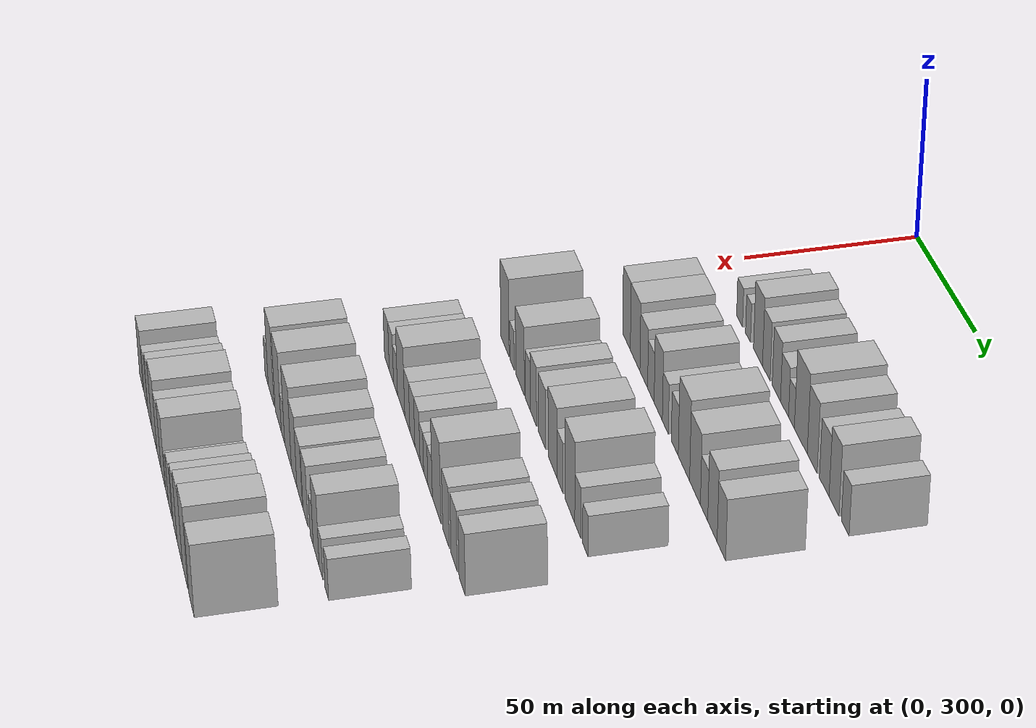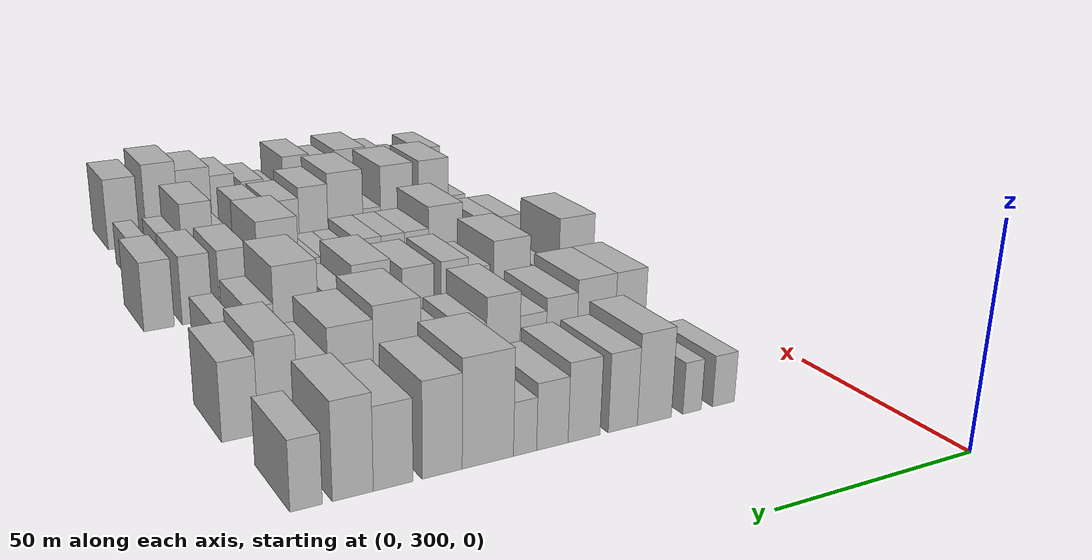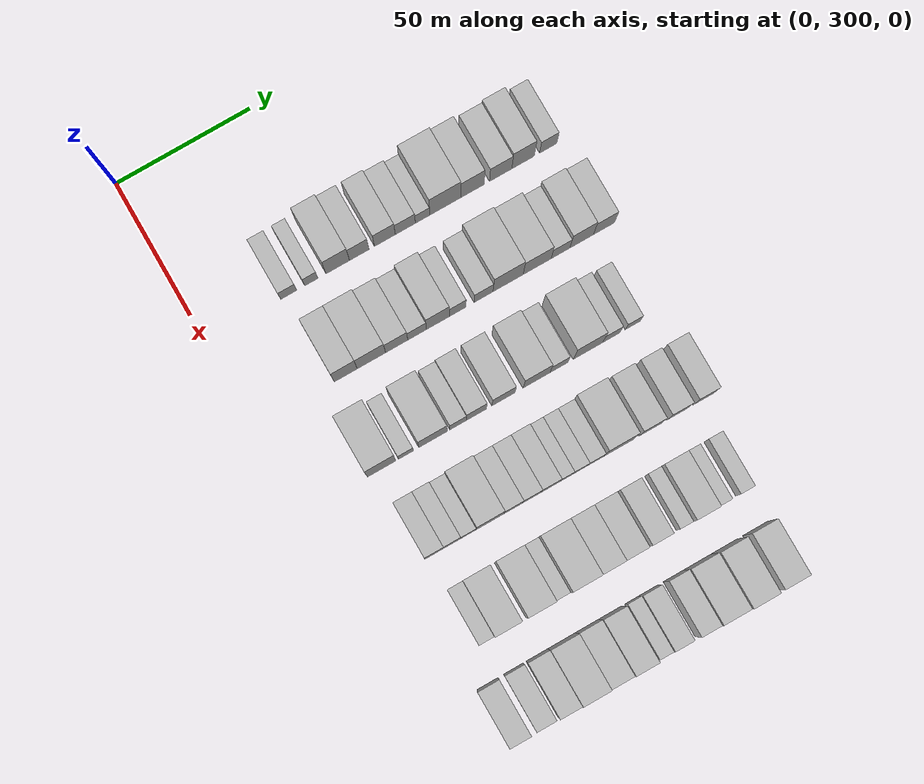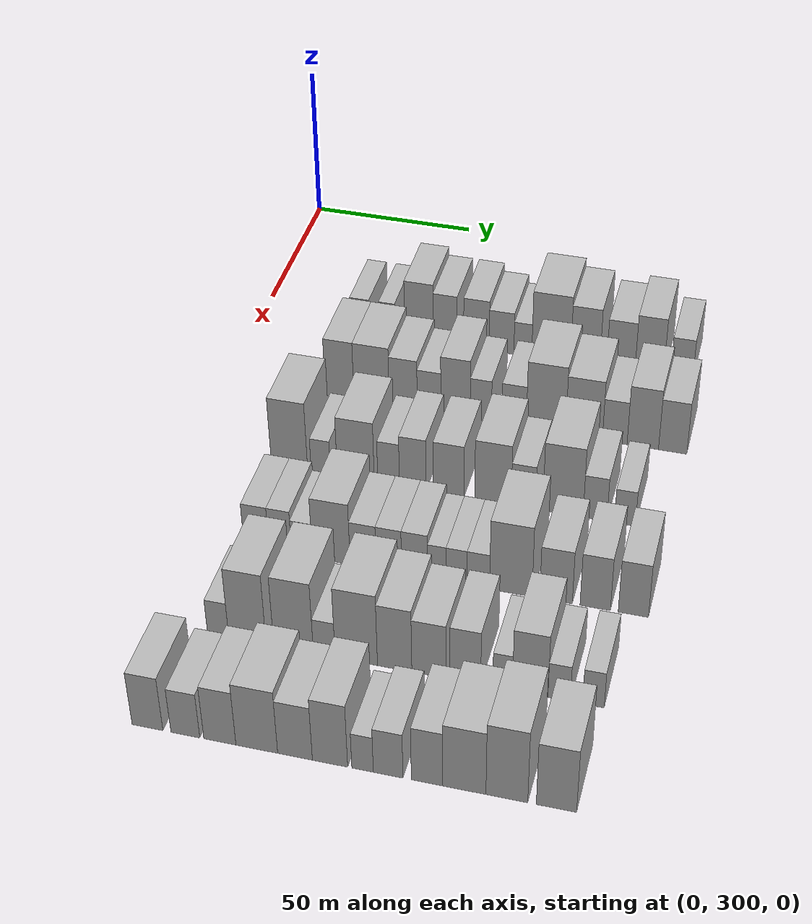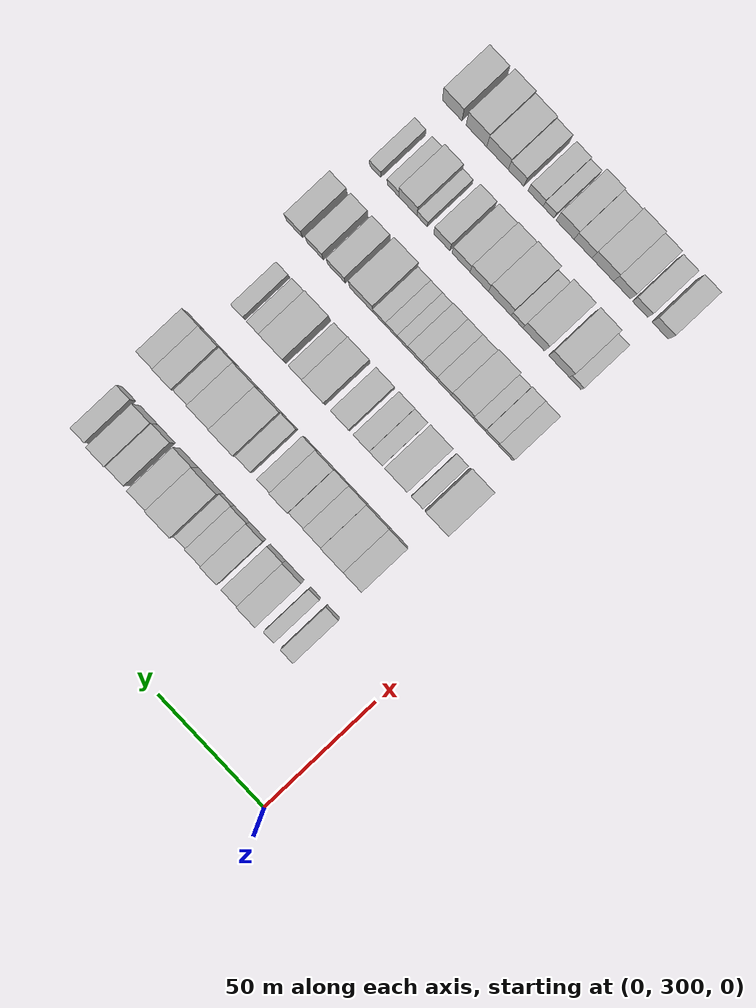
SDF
<sdf version="1.6">
 <world name="default">
  <model name="building_93">
   <static>1</static>
   <pose>50.0000 330.9010 0 0.000000 0.000000 0.000000</pose>
   <link name="link">
    <pose>0 0 6.00 0 0 0</pose>
    <collision name="collision"><geometry><box><size>20.0000 5.9238 12.0000</size></box></geometry></collision>
    <visual name="visual">
     <cast_shadows>0</cast_shadows>
     <geometry><box><size>20.0000 5.9238 12.0000</size></box></geometry>
     <material>
      <script>
       <uri>model://HANNAS_wall/materials/scripts</uri>
       <uri>model://HANNAS_wall/materials/textures</uri>
       <name>vrc/HANNAS_wall</name>
      </script>
     </material>
    </visual>
   </link>
  </model>
  <model name="building_94">
   <static>1</static>
   <pose>50.0000 339.3056 0 0.000000 0.000000 0.000000</pose>
   <link name="link">
    <pose>0 0 6.00 0 0 0</pose>
    <collision name="collision"><geometry><box><size>20.0000 4.8854 12.0000</size></box></geometry></collision>
    <visual name="visual">
     <cast_shadows>0</cast_shadows>
     <geometry><box><size>20.0000 4.8854 12.0000</size></box></geometry>
     <material>
      <script>
       <uri>model://HANNAS_wall/materials/scripts</uri>
       <uri>model://HANNAS_wall/materials/textures</uri>
       <name>vrc/HANNAS_wall</name>
      </script>
     </material>
    </visual>
   </link>
  </model>
  <model name="building_95">
   <static>1</static>
   <pose>50.0000 349.1194 0 0.000000 0.000000 0.000000</pose>
   <link name="link">
    <pose>0 0 10.50 0 0 0</pose>
    <collision name="collision"><geometry><box><size>20.0000 8.7423 21.0000</size></box></geometry></collision>
    <visual name="visual">
     <cast_shadows>0</cast_shadows>
     <geometry><box><size>20.0000 8.7423 21.0000</size></box></geometry>
     <material>
      <script>
       <uri>model://HANNAS_wall/materials/scripts</uri>
       <uri>model://HANNAS_wall/materials/textures</uri>
       <name>vrc/HANNAS_wall</name>
      </script>
     </material>
    </visual>
   </link>
  </model>
  <model name="building_96">
   <static>1</static>
   <pose>50.0000 357.1455 0 0.000000 0.000000 0.000000</pose>
   <link name="link">
    <pose>0 0 9.00 0 0 0</pose>
    <collision name="collision"><geometry><box><size>20.0000 7.3099 18.0000</size></box></geometry></collision>
    <visual name="visual">
     <cast_shadows>0</cast_shadows>
     <geometry><box><size>20.0000 7.3099 18.0000</size></box></geometry>
     <material>
      <script>
       <uri>model://HANNAS_wall/materials/scripts</uri>
       <uri>model://HANNAS_wall/materials/textures</uri>
       <name>vrc/HANNAS_wall</name>
      </script>
     </material>
    </visual>
   </link>
  </model>
  <model name="building_97">
   <static>1</static>
   <pose>50.0000 366.6924 0 0.000000 0.000000 0.000000</pose>
   <link name="link">
    <pose>0 0 9.00 0 0 0</pose>
    <collision name="collision"><geometry><box><size>20.0000 7.7838 18.0000</size></box></geometry></collision>
    <visual name="visual">
     <cast_shadows>0</cast_shadows>
     <geometry><box><size>20.0000 7.7838 18.0000</size></box></geometry>
     <material>
      <script>
       <uri>model://HANNAS_wall/materials/scripts</uri>
       <uri>model://HANNAS_wall/materials/textures</uri>
       <name>vrc/HANNAS_wall</name>
      </script>
     </material>
    </visual>
   </link>
  </model>
  <model name="building_98">
   <static>1</static>
   <pose>50.0000 374.3285 0 0.000000 0.000000 0.000000</pose>
   <link name="link">
    <pose>0 0 7.50 0 0 0</pose>
    <collision name="collision"><geometry><box><size>20.0000 7.4884 15.0000</size></box></geometry></collision>
    <visual name="visual">
     <cast_shadows>0</cast_shadows>
     <geometry><box><size>20.0000 7.4884 15.0000</size></box></geometry>
     <material>
      <script>
       <uri>model://HANNAS_wall/materials/scripts</uri>
       <uri>model://HANNAS_wall/materials/textures</uri>
       <name>vrc/HANNAS_wall</name>
      </script>
     </material>
    </visual>
   </link>
  </model>
  <model name="building_99">
   <static>1</static>
   <pose>50.0000 380.7645 0 0.000000 0.000000 0.000000</pose>
   <link name="link">
    <pose>0 0 6.00 0 0 0</pose>
    <collision name="collision"><geometry><box><size>20.0000 5.3836 12.0000</size></box></geometry></collision>
    <visual name="visual">
     <cast_shadows>0</cast_shadows>
     <geometry><box><size>20.0000 5.3836 12.0000</size></box></geometry>
     <material>
      <script>
       <uri>model://HANNAS_wall/materials/scripts</uri>
       <uri>model://HANNAS_wall/materials/textures</uri>
       <name>vrc/HANNAS_wall</name>
      </script>
     </material>
    </visual>
   </link>
  </model>
  <model name="building_100">
   <static>1</static>
   <pose>50.0000 389.2644 0 0.000000 0.000000 0.000000</pose>
   <link name="link">
    <pose>0 0 12.00 0 0 0</pose>
    <collision name="collision"><geometry><box><size>20.0000 11.6163 24.0000</size></box></geometry></collision>
    <visual name="visual">
     <cast_shadows>0</cast_shadows>
     <geometry><box><size>20.0000 11.6163 24.0000</size></box></geometry>
     <material>
      <script>
       <uri>model://HANNAS_wall/materials/scripts</uri>
       <uri>model://HANNAS_wall/materials/textures</uri>
       <name>vrc/HANNAS_wall</name>
      </script>
     </material>
    </visual>
   </link>
  </model>
  <model name="building_101">
   <static>1</static>
   <pose>50.0000 399.4384 0 0.000000 0.000000 0.000000</pose>
   <link name="link">
    <pose>0 0 10.50 0 0 0</pose>
    <collision name="collision"><geometry><box><size>20.0000 8.7316 21.0000</size></box></geometry></collision>
    <visual name="visual">
     <cast_shadows>0</cast_shadows>
     <geometry><box><size>20.0000 8.7316 21.0000</size></box></geometry>
     <material>
      <script>
       <uri>model://HANNAS_wall/materials/scripts</uri>
       <uri>model://HANNAS_wall/materials/textures</uri>
       <name>vrc/HANNAS_wall</name>
      </script>
     </material>
    </visual>
   </link>
  </model>
  <model name="building_102">
   <static>1</static>
   <pose>50.0000 410.0039 0 0.000000 0.000000 0.000000</pose>
   <link name="link">
    <pose>0 0 9.00 0 0 0</pose>
    <collision name="collision"><geometry><box><size>20.0000 8.3994 18.0000</size></box></geometry></collision>
    <visual name="visual">
     <cast_shadows>0</cast_shadows>
     <geometry><box><size>20.0000 8.3994 18.0000</size></box></geometry>
     <material>
      <script>
       <uri>model://HANNAS_wall/materials/scripts</uri>
       <uri>model://HANNAS_wall/materials/textures</uri>
       <name>vrc/HANNAS_wall</name>
      </script>
     </material>
    </visual>
   </link>
  </model>
  <model name="building_103">
   <static>1</static>
   <pose>50.0000 418.4272 0 0.000000 0.000000 0.000000</pose>
   <link name="link">
    <pose>0 0 10.50 0 0 0</pose>
    <collision name="collision"><geometry><box><size>20.0000 8.4471 21.0000</size></box></geometry></collision>
    <visual name="visual">
     <cast_shadows>0</cast_shadows>
     <geometry><box><size>20.0000 8.4471 21.0000</size></box></geometry>
     <material>
      <script>
       <uri>model://HANNAS_wall/materials/scripts</uri>
       <uri>model://HANNAS_wall/materials/textures</uri>
       <name>vrc/HANNAS_wall</name>
      </script>
     </material>
    </visual>
   </link>
  </model>
  <model name="building_104">
   <static>1</static>
   <pose>50.0000 427.8974 0 0.000000 0.000000 0.000000</pose>
   <link name="link">
    <pose>0 0 7.50 0 0 0</pose>
    <collision name="collision"><geometry><box><size>20.0000 6.4935 15.0000</size></box></geometry></collision>
    <visual name="visual">
     <cast_shadows>0</cast_shadows>
     <geometry><box><size>20.0000 6.4935 15.0000</size></box></geometry>
     <material>
      <script>
       <uri>model://HANNAS_wall/materials/scripts</uri>
       <uri>model://HANNAS_wall/materials/textures</uri>
       <name>vrc/HANNAS_wall</name>
      </script>
     </material>
    </visual>
   </link>
  </model>
  <model name="building_214">
   <static>1</static>
   <pose>82.0000 333.9862 0 0.000000 0.000000 0.000000</pose>
   <link name="link">
    <pose>0 0 10.50 0 0 0</pose>
    <collision name="collision"><geometry><box><size>20.0000 8.5135 21.0000</size></box></geometry></collision>
    <visual name="visual">
     <cast_shadows>0</cast_shadows>
     <geometry><box><size>20.0000 8.5135 21.0000</size></box></geometry>
     <material>
      <script>
       <uri>model://HANNAS_wall/materials/scripts</uri>
       <uri>model://HANNAS_wall/materials/textures</uri>
       <name>vrc/HANNAS_wall</name>
      </script>
     </material>
    </visual>
   </link>
  </model>
  <model name="building_215">
   <static>1</static>
   <pose>82.0000 343.4854 0 0.000000 0.000000 0.000000</pose>
   <link name="link">
    <pose>0 0 10.50 0 0 0</pose>
    <collision name="collision"><geometry><box><size>20.0000 10.4848 21.0000</size></box></geometry></collision>
    <visual name="visual">
     <cast_shadows>0</cast_shadows>
     <geometry><box><size>20.0000 10.4848 21.0000</size></box></geometry>
     <material>
      <script>
       <uri>model://HANNAS_wall/materials/scripts</uri>
       <uri>model://HANNAS_wall/materials/textures</uri>
       <name>vrc/HANNAS_wall</name>
      </script>
     </material>
    </visual>
   </link>
  </model>
  <model name="building_216">
   <static>1</static>
   <pose>82.0000 352.8462 0 0.000000 0.000000 0.000000</pose>
   <link name="link">
    <pose>0 0 9.00 0 0 0</pose>
    <collision name="collision"><geometry><box><size>20.0000 8.2369 18.0000</size></box></geometry></collision>
    <visual name="visual">
     <cast_shadows>0</cast_shadows>
     <geometry><box><size>20.0000 8.2369 18.0000</size></box></geometry>
     <material>
      <script>
       <uri>model://HANNAS_wall/materials/scripts</uri>
       <uri>model://HANNAS_wall/materials/textures</uri>
       <name>vrc/HANNAS_wall</name>
      </script>
     </material>
    </visual>
   </link>
  </model>
  <model name="building_217">
   <static>1</static>
   <pose>82.0000 360.4219 0 0.000000 0.000000 0.000000</pose>
   <link name="link">
    <pose>0 0 7.50 0 0 0</pose>
    <collision name="collision"><geometry><box><size>20.0000 6.9145 15.0000</size></box></geometry></collision>
    <visual name="visual">
     <cast_shadows>0</cast_shadows>
     <geometry><box><size>20.0000 6.9145 15.0000</size></box></geometry>
     <material>
      <script>
       <uri>model://HANNAS_wall/materials/scripts</uri>
       <uri>model://HANNAS_wall/materials/textures</uri>
       <name>vrc/HANNAS_wall</name>
      </script>
     </material>
    </visual>
   </link>
  </model>
  <model name="building_218">
   <static>1</static>
   <pose>82.0000 368.1622 0 0.000000 0.000000 0.000000</pose>
   <link name="link">
    <pose>0 0 10.50 0 0 0</pose>
    <collision name="collision"><geometry><box><size>20.0000 8.5661 21.0000</size></box></geometry></collision>
    <visual name="visual">
     <cast_shadows>0</cast_shadows>
     <geometry><box><size>20.0000 8.5661 21.0000</size></box></geometry>
     <material>
      <script>
       <uri>model://HANNAS_wall/materials/scripts</uri>
       <uri>model://HANNAS_wall/materials/textures</uri>
       <name>vrc/HANNAS_wall</name>
      </script>
     </material>
    </visual>
   </link>
  </model>
  <model name="building_219">
   <static>1</static>
   <pose>82.0000 375.5232 0 0.000000 0.000000 0.000000</pose>
   <link name="link">
    <pose>0 0 7.50 0 0 0</pose>
    <collision name="collision"><geometry><box><size>20.0000 6.1558 15.0000</size></box></geometry></collision>
    <visual name="visual">
     <cast_shadows>0</cast_shadows>
     <geometry><box><size>20.0000 6.1558 15.0000</size></box></geometry>
     <material>
      <script>
       <uri>model://HANNAS_wall/materials/scripts</uri>
       <uri>model://HANNAS_wall/materials/textures</uri>
       <name>vrc/HANNAS_wall</name>
      </script>
     </material>
    </visual>
   </link>
  </model>
  <model name="building_220">
   <static>1</static>
   <pose>82.0000 385.1319 0 0.000000 0.000000 0.000000</pose>
   <link name="link">
    <pose>0 0 7.50 0 0 0</pose>
    <collision name="collision"><geometry><box><size>20.0000 7.0618 15.0000</size></box></geometry></collision>
    <visual name="visual">
     <cast_shadows>0</cast_shadows>
     <geometry><box><size>20.0000 7.0618 15.0000</size></box></geometry>
     <material>
      <script>
       <uri>model://HANNAS_wall/materials/scripts</uri>
       <uri>model://HANNAS_wall/materials/textures</uri>
       <name>vrc/HANNAS_wall</name>
      </script>
     </material>
    </visual>
   </link>
  </model>
  <model name="building_221">
   <static>1</static>
   <pose>82.0000 394.3047 0 0.000000 0.000000 0.000000</pose>
   <link name="link">
    <pose>0 0 12.00 0 0 0</pose>
    <collision name="collision"><geometry><box><size>20.0000 11.2838 24.0000</size></box></geometry></collision>
    <visual name="visual">
     <cast_shadows>0</cast_shadows>
     <geometry><box><size>20.0000 11.2838 24.0000</size></box></geometry>
     <material>
      <script>
       <uri>model://HANNAS_wall/materials/scripts</uri>
       <uri>model://HANNAS_wall/materials/textures</uri>
       <name>vrc/HANNAS_wall</name>
      </script>
     </material>
    </visual>
   </link>
  </model>
  <model name="building_222">
   <static>1</static>
   <pose>82.0000 405.1828 0 0.000000 0.000000 0.000000</pose>
   <link name="link">
    <pose>0 0 10.50 0 0 0</pose>
    <collision name="collision"><geometry><box><size>20.0000 10.4722 21.0000</size></box></geometry></collision>
    <visual name="visual">
     <cast_shadows>0</cast_shadows>
     <geometry><box><size>20.0000 10.4722 21.0000</size></box></geometry>
     <material>
      <script>
       <uri>model://HANNAS_wall/materials/scripts</uri>
       <uri>model://HANNAS_wall/materials/textures</uri>
       <name>vrc/HANNAS_wall</name>
      </script>
     </material>
    </visual>
   </link>
  </model>
  <model name="building_223">
   <static>1</static>
   <pose>82.0000 413.9136 0 0.000000 0.000000 0.000000</pose>
   <link name="link">
    <pose>0 0 7.50 0 0 0</pose>
    <collision name="collision"><geometry><box><size>20.0000 6.9894 15.0000</size></box></geometry></collision>
    <visual name="visual">
     <cast_shadows>0</cast_shadows>
     <geometry><box><size>20.0000 6.9894 15.0000</size></box></geometry>
     <material>
      <script>
       <uri>model://HANNAS_wall/materials/scripts</uri>
       <uri>model://HANNAS_wall/materials/textures</uri>
       <name>vrc/HANNAS_wall</name>
      </script>
     </material>
    </visual>
   </link>
  </model>
  <model name="building_224">
   <static>1</static>
   <pose>82.0000 421.8278 0 0.000000 0.000000 0.000000</pose>
   <link name="link">
    <pose>0 0 10.50 0 0 0</pose>
    <collision name="collision"><geometry><box><size>20.0000 8.8389 21.0000</size></box></geometry></collision>
    <visual name="visual">
     <cast_shadows>0</cast_shadows>
     <geometry><box><size>20.0000 8.8389 21.0000</size></box></geometry>
     <material>
      <script>
       <uri>model://HANNAS_wall/materials/scripts</uri>
       <uri>model://HANNAS_wall/materials/textures</uri>
       <name>vrc/HANNAS_wall</name>
      </script>
     </material>
    </visual>
   </link>
  </model>
  <model name="building_225">
   <static>1</static>
   <pose>82.0000 430.2130 0 0.000000 0.000000 0.000000</pose>
   <link name="link">
    <pose>0 0 9.00 0 0 0</pose>
    <collision name="collision"><geometry><box><size>20.0000 7.9316 18.0000</size></box></geometry></collision>
    <visual name="visual">
     <cast_shadows>0</cast_shadows>
     <geometry><box><size>20.0000 7.9316 18.0000</size></box></geometry>
     <material>
      <script>
       <uri>model://HANNAS_wall/materials/scripts</uri>
       <uri>model://HANNAS_wall/materials/textures</uri>
       <name>vrc/HANNAS_wall</name>
      </script>
     </material>
    </visual>
   </link>
  </model>
  <model name="building_334">
   <static>1</static>
   <pose>114.0000 329.0784 0 0.000000 0.000000 0.000000</pose>
   <link name="link">
    <pose>0 0 12.00 0 0 0</pose>
    <collision name="collision"><geometry><box><size>20.0000 10.4273 24.0000</size></box></geometry></collision>
    <visual name="visual">
     <cast_shadows>0</cast_shadows>
     <geometry><box><size>20.0000 10.4273 24.0000</size></box></geometry>
     <material>
      <script>
       <uri>model://HANNAS_wall/materials/scripts</uri>
       <uri>model://HANNAS_wall/materials/textures</uri>
       <name>vrc/HANNAS_wall</name>
      </script>
     </material>
    </visual>
   </link>
  </model>
  <model name="building_335">
   <static>1</static>
   <pose>114.0000 338.0367 0 0.000000 0.000000 0.000000</pose>
   <link name="link">
    <pose>0 0 6.00 0 0 0</pose>
    <collision name="collision"><geometry><box><size>20.0000 5.4892 12.0000</size></box></geometry></collision>
    <visual name="visual">
     <cast_shadows>0</cast_shadows>
     <geometry><box><size>20.0000 5.4892 12.0000</size></box></geometry>
     <material>
      <script>
       <uri>model://HANNAS_wall/materials/scripts</uri>
       <uri>model://HANNAS_wall/materials/textures</uri>
       <name>vrc/HANNAS_wall</name>
      </script>
     </material>
    </visual>
   </link>
  </model>
  <model name="building_336">
   <static>1</static>
   <pose>114.0000 348.0158 0 0.000000 0.000000 0.000000</pose>
   <link name="link">
    <pose>0 0 10.50 0 0 0</pose>
    <collision name="collision"><geometry><box><size>20.0000 10.4688 21.0000</size></box></geometry></collision>
    <visual name="visual">
     <cast_shadows>0</cast_shadows>
     <geometry><box><size>20.0000 10.4688 21.0000</size></box></geometry>
     <material>
      <script>
       <uri>model://HANNAS_wall/materials/scripts</uri>
       <uri>model://HANNAS_wall/materials/textures</uri>
       <name>vrc/HANNAS_wall</name>
      </script>
     </material>
    </visual>
   </link>
  </model>
  <model name="building_337">
   <static>1</static>
   <pose>114.0000 357.3018 0 0.000000 0.000000 0.000000</pose>
   <link name="link">
    <pose>0 0 7.50 0 0 0</pose>
    <collision name="collision"><geometry><box><size>20.0000 6.1032 15.0000</size></box></geometry></collision>
    <visual name="visual">
     <cast_shadows>0</cast_shadows>
     <geometry><box><size>20.0000 6.1032 15.0000</size></box></geometry>
     <material>
      <script>
       <uri>model://HANNAS_wall/materials/scripts</uri>
       <uri>model://HANNAS_wall/materials/textures</uri>
       <name>vrc/HANNAS_wall</name>
      </script>
     </material>
    </visual>
   </link>
  </model>
  <model name="building_338">
   <static>1</static>
   <pose>114.0000 364.0775 0 0.000000 0.000000 0.000000</pose>
   <link name="link">
    <pose>0 0 9.00 0 0 0</pose>
    <collision name="collision"><geometry><box><size>20.0000 7.4482 18.0000</size></box></geometry></collision>
    <visual name="visual">
     <cast_shadows>0</cast_shadows>
     <geometry><box><size>20.0000 7.4482 18.0000</size></box></geometry>
     <material>
      <script>
       <uri>model://HANNAS_wall/materials/scripts</uri>
       <uri>model://HANNAS_wall/materials/textures</uri>
       <name>vrc/HANNAS_wall</name>
      </script>
     </material>
    </visual>
   </link>
  </model>
  <model name="building_339">
   <static>1</static>
   <pose>114.0000 374.0802 0 0.000000 0.000000 0.000000</pose>
   <link name="link">
    <pose>0 0 9.00 0 0 0</pose>
    <collision name="collision"><geometry><box><size>20.0000 8.5573 18.0000</size></box></geometry></collision>
    <visual name="visual">
     <cast_shadows>0</cast_shadows>
     <geometry><box><size>20.0000 8.5573 18.0000</size></box></geometry>
     <material>
      <script>
       <uri>model://HANNAS_wall/materials/scripts</uri>
       <uri>model://HANNAS_wall/materials/textures</uri>
       <name>vrc/HANNAS_wall</name>
      </script>
     </material>
    </visual>
   </link>
  </model>
  <model name="building_340">
   <static>1</static>
   <pose>114.0000 386.3802 0 0.000000 0.000000 0.000000</pose>
   <link name="link">
    <pose>0 0 10.50 0 0 0</pose>
    <collision name="collision"><geometry><box><size>20.0000 10.0427 21.0000</size></box></geometry></collision>
    <visual name="visual">
     <cast_shadows>0</cast_shadows>
     <geometry><box><size>20.0000 10.0427 21.0000</size></box></geometry>
     <material>
      <script>
       <uri>model://HANNAS_wall/materials/scripts</uri>
       <uri>model://HANNAS_wall/materials/textures</uri>
       <name>vrc/HANNAS_wall</name>
      </script>
     </material>
    </visual>
   </link>
  </model>
  <model name="building_341">
   <static>1</static>
   <pose>114.0000 394.7294 0 0.000000 0.000000 0.000000</pose>
   <link name="link">
    <pose>0 0 7.50 0 0 0</pose>
    <collision name="collision"><geometry><box><size>20.0000 6.6557 15.0000</size></box></geometry></collision>
    <visual name="visual">
     <cast_shadows>0</cast_shadows>
     <geometry><box><size>20.0000 6.6557 15.0000</size></box></geometry>
     <material>
      <script>
       <uri>model://HANNAS_wall/materials/scripts</uri>
       <uri>model://HANNAS_wall/materials/textures</uri>
       <name>vrc/HANNAS_wall</name>
      </script>
     </material>
    </visual>
   </link>
  </model>
  <model name="building_342">
   <static>1</static>
   <pose>114.0000 405.5381 0 0.000000 0.000000 0.000000</pose>
   <link name="link">
    <pose>0 0 12.00 0 0 0</pose>
    <collision name="collision"><geometry><box><size>20.0000 10.9618 24.0000</size></box></geometry></collision>
    <visual name="visual">
     <cast_shadows>0</cast_shadows>
     <geometry><box><size>20.0000 10.9618 24.0000</size></box></geometry>
     <material>
      <script>
       <uri>model://HANNAS_wall/materials/scripts</uri>
       <uri>model://HANNAS_wall/materials/textures</uri>
       <name>vrc/HANNAS_wall</name>
      </script>
     </material>
    </visual>
   </link>
  </model>
  <model name="building_343">
   <static>1</static>
   <pose>114.0000 414.2505 0 0.000000 0.000000 0.000000</pose>
   <link name="link">
    <pose>0 0 7.50 0 0 0</pose>
    <collision name="collision"><geometry><box><size>20.0000 6.4630 15.0000</size></box></geometry></collision>
    <visual name="visual">
     <cast_shadows>0</cast_shadows>
     <geometry><box><size>20.0000 6.4630 15.0000</size></box></geometry>
     <material>
      <script>
       <uri>model://HANNAS_wall/materials/scripts</uri>
       <uri>model://HANNAS_wall/materials/textures</uri>
       <name>vrc/HANNAS_wall</name>
      </script>
     </material>
    </visual>
   </link>
  </model>
  <model name="building_344">
   <static>1</static>
   <pose>114.0000 422.3136 0 0.000000 0.000000 0.000000</pose>
   <link name="link">
    <pose>0 0 6.00 0 0 0</pose>
    <collision name="collision"><geometry><box><size>20.0000 5.6633 12.0000</size></box></geometry></collision>
    <visual name="visual">
     <cast_shadows>0</cast_shadows>
     <geometry><box><size>20.0000 5.6633 12.0000</size></box></geometry>
     <material>
      <script>
       <uri>model://HANNAS_wall/materials/scripts</uri>
       <uri>model://HANNAS_wall/materials/textures</uri>
       <name>vrc/HANNAS_wall</name>
      </script>
     </material>
    </visual>
   </link>
  </model>
  <model name="building_451">
   <static>1</static>
   <pose>146.0000 330.2101 0 0.000000 0.000000 0.000000</pose>
   <link name="link">
    <pose>0 0 7.50 0 0 0</pose>
    <collision name="collision"><geometry><box><size>20.0000 6.8769 15.0000</size></box></geometry></collision>
    <visual name="visual">
     <cast_shadows>0</cast_shadows>
     <geometry><box><size>20.0000 6.8769 15.0000</size></box></geometry>
     <material>
      <script>
       <uri>model://HANNAS_wall/materials/scripts</uri>
       <uri>model://HANNAS_wall/materials/textures</uri>
       <name>vrc/HANNAS_wall</name>
      </script>
     </material>
    </visual>
   </link>
  </model>
  <model name="building_452">
   <static>1</static>
   <pose>146.0000 336.7537 0 0.000000 0.000000 0.000000</pose>
   <link name="link">
    <pose>0 0 7.50 0 0 0</pose>
    <collision name="collision"><geometry><box><size>20.0000 6.2104 15.0000</size></box></geometry></collision>
    <visual name="visual">
     <cast_shadows>0</cast_shadows>
     <geometry><box><size>20.0000 6.2104 15.0000</size></box></geometry>
     <material>
      <script>
       <uri>model://HANNAS_wall/materials/scripts</uri>
       <uri>model://HANNAS_wall/materials/textures</uri>
       <name>vrc/HANNAS_wall</name>
      </script>
     </material>
    </visual>
   </link>
  </model>
  <model name="building_453">
   <static>1</static>
   <pose>146.0000 342.6930 0 0.000000 0.000000 0.000000</pose>
   <link name="link">
    <pose>0 0 6.00 0 0 0</pose>
    <collision name="collision"><geometry><box><size>20.0000 5.6681 12.0000</size></box></geometry></collision>
    <visual name="visual">
     <cast_shadows>0</cast_shadows>
     <geometry><box><size>20.0000 5.6681 12.0000</size></box></geometry>
     <material>
      <script>
       <uri>model://HANNAS_wall/materials/scripts</uri>
       <uri>model://HANNAS_wall/materials/textures</uri>
       <name>vrc/HANNAS_wall</name>
      </script>
     </material>
    </visual>
   </link>
  </model>
  <model name="building_454">
   <static>1</static>
   <pose>146.0000 350.6305 0 0.000000 0.000000 0.000000</pose>
   <link name="link">
    <pose>0 0 10.50 0 0 0</pose>
    <collision name="collision"><geometry><box><size>20.0000 10.2070 21.0000</size></box></geometry></collision>
    <visual name="visual">
     <cast_shadows>0</cast_shadows>
     <geometry><box><size>20.0000 10.2070 21.0000</size></box></geometry>
     <material>
      <script>
       <uri>model://HANNAS_wall/materials/scripts</uri>
       <uri>model://HANNAS_wall/materials/textures</uri>
       <name>vrc/HANNAS_wall</name>
      </script>
     </material>
    </visual>
   </link>
  </model>
  <model name="building_455">
   <static>1</static>
   <pose>146.0000 359.2411 0 0.000000 0.000000 0.000000</pose>
   <link name="link">
    <pose>0 0 7.50 0 0 0</pose>
    <collision name="collision"><geometry><box><size>20.0000 7.0142 15.0000</size></box></geometry></collision>
    <visual name="visual">
     <cast_shadows>0</cast_shadows>
     <geometry><box><size>20.0000 7.0142 15.0000</size></box></geometry>
     <material>
      <script>
       <uri>model://HANNAS_wall/materials/scripts</uri>
       <uri>model://HANNAS_wall/materials/textures</uri>
       <name>vrc/HANNAS_wall</name>
      </script>
     </material>
    </visual>
   </link>
  </model>
  <model name="building_456">
   <static>1</static>
   <pose>146.0000 366.1520 0 0.000000 0.000000 0.000000</pose>
   <link name="link">
    <pose>0 0 7.50 0 0 0</pose>
    <collision name="collision"><geometry><box><size>20.0000 6.8077 15.0000</size></box></geometry></collision>
    <visual name="visual">
     <cast_shadows>0</cast_shadows>
     <geometry><box><size>20.0000 6.8077 15.0000</size></box></geometry>
     <material>
      <script>
       <uri>model://HANNAS_wall/materials/scripts</uri>
       <uri>model://HANNAS_wall/materials/textures</uri>
       <name>vrc/HANNAS_wall</name>
      </script>
     </material>
    </visual>
   </link>
  </model>
  <model name="building_457">
   <static>1</static>
   <pose>146.0000 373.0266 0 0.000000 0.000000 0.000000</pose>
   <link name="link">
    <pose>0 0 7.50 0 0 0</pose>
    <collision name="collision"><geometry><box><size>20.0000 6.9415 15.0000</size></box></geometry></collision>
    <visual name="visual">
     <cast_shadows>0</cast_shadows>
     <geometry><box><size>20.0000 6.9415 15.0000</size></box></geometry>
     <material>
      <script>
       <uri>model://HANNAS_wall/materials/scripts</uri>
       <uri>model://HANNAS_wall/materials/textures</uri>
       <name>vrc/HANNAS_wall</name>
      </script>
     </material>
    </visual>
   </link>
  </model>
  <model name="building_458">
   <static>1</static>
   <pose>146.0000 378.9245 0 0.000000 0.000000 0.000000</pose>
   <link name="link">
    <pose>0 0 6.00 0 0 0</pose>
    <collision name="collision"><geometry><box><size>20.0000 4.8542 12.0000</size></box></geometry></collision>
    <visual name="visual">
     <cast_shadows>0</cast_shadows>
     <geometry><box><size>20.0000 4.8542 12.0000</size></box></geometry>
     <material>
      <script>
       <uri>model://HANNAS_wall/materials/scripts</uri>
       <uri>model://HANNAS_wall/materials/textures</uri>
       <name>vrc/HANNAS_wall</name>
      </script>
     </material>
    </visual>
   </link>
  </model>
  <model name="building_459">
   <static>1</static>
   <pose>146.0000 384.1154 0 0.000000 0.000000 0.000000</pose>
   <link name="link">
    <pose>0 0 6.00 0 0 0</pose>
    <collision name="collision"><geometry><box><size>20.0000 5.5277 12.0000</size></box></geometry></collision>
    <visual name="visual">
     <cast_shadows>0</cast_shadows>
     <geometry><box><size>20.0000 5.5277 12.0000</size></box></geometry>
     <material>
      <script>
       <uri>model://HANNAS_wall/materials/scripts</uri>
       <uri>model://HANNAS_wall/materials/textures</uri>
       <name>vrc/HANNAS_wall</name>
      </script>
     </material>
    </visual>
   </link>
  </model>
  <model name="building_460">
   <static>1</static>
   <pose>146.0000 389.8564 0 0.000000 0.000000 0.000000</pose>
   <link name="link">
    <pose>0 0 6.00 0 0 0</pose>
    <collision name="collision"><geometry><box><size>20.0000 5.9543 12.0000</size></box></geometry></collision>
    <visual name="visual">
     <cast_shadows>0</cast_shadows>
     <geometry><box><size>20.0000 5.9543 12.0000</size></box></geometry>
     <material>
      <script>
       <uri>model://HANNAS_wall/materials/scripts</uri>
       <uri>model://HANNAS_wall/materials/textures</uri>
       <name>vrc/HANNAS_wall</name>
      </script>
     </material>
    </visual>
   </link>
  </model>
  <model name="building_461">
   <static>1</static>
   <pose>146.0000 398.3703 0 0.000000 0.000000 0.000000</pose>
   <link name="link">
    <pose>0 0 12.00 0 0 0</pose>
    <collision name="collision"><geometry><box><size>20.0000 11.0735 24.0000</size></box></geometry></collision>
    <visual name="visual">
     <cast_shadows>0</cast_shadows>
     <geometry><box><size>20.0000 11.0735 24.0000</size></box></geometry>
     <material>
      <script>
       <uri>model://HANNAS_wall/materials/scripts</uri>
       <uri>model://HANNAS_wall/materials/textures</uri>
       <name>vrc/HANNAS_wall</name>
      </script>
     </material>
    </visual>
   </link>
  </model>
  <model name="building_462">
   <static>1</static>
   <pose>146.0000 410.1213 0 0.000000 0.000000 0.000000</pose>
   <link name="link">
    <pose>0 0 9.00 0 0 0</pose>
    <collision name="collision"><geometry><box><size>20.0000 8.4285 18.0000</size></box></geometry></collision>
    <visual name="visual">
     <cast_shadows>0</cast_shadows>
     <geometry><box><size>20.0000 8.4285 18.0000</size></box></geometry>
     <material>
      <script>
       <uri>model://HANNAS_wall/materials/scripts</uri>
       <uri>model://HANNAS_wall/materials/textures</uri>
       <name>vrc/HANNAS_wall</name>
      </script>
     </material>
    </visual>
   </link>
  </model>
  <model name="building_463">
   <static>1</static>
   <pose>146.0000 420.2334 0 0.000000 0.000000 0.000000</pose>
   <link name="link">
    <pose>0 0 9.00 0 0 0</pose>
    <collision name="collision"><geometry><box><size>20.0000 7.7958 18.0000</size></box></geometry></collision>
    <visual name="visual">
     <cast_shadows>0</cast_shadows>
     <geometry><box><size>20.0000 7.7958 18.0000</size></box></geometry>
     <material>
      <script>
       <uri>model://HANNAS_wall/materials/scripts</uri>
       <uri>model://HANNAS_wall/materials/textures</uri>
       <name>vrc/HANNAS_wall</name>
      </script>
     </material>
    </visual>
   </link>
  </model>
  <model name="building_464">
   <static>1</static>
   <pose>146.0000 429.9853 0 0.000000 0.000000 0.000000</pose>
   <link name="link">
    <pose>0 0 9.00 0 0 0</pose>
    <collision name="collision"><geometry><box><size>20.0000 7.7079 18.0000</size></box></geometry></collision>
    <visual name="visual">
     <cast_shadows>0</cast_shadows>
     <geometry><box><size>20.0000 7.7079 18.0000</size></box></geometry>
     <material>
      <script>
       <uri>model://HANNAS_wall/materials/scripts</uri>
       <uri>model://HANNAS_wall/materials/textures</uri>
       <name>vrc/HANNAS_wall</name>
      </script>
     </material>
    </visual>
   </link>
  </model>
  <model name="building_575">
   <static>1</static>
   <pose>178.0000 330.8354 0 0.000000 0.000000 0.000000</pose>
   <link name="link">
    <pose>0 0 6.00 0 0 0</pose>
    <collision name="collision"><geometry><box><size>20.0000 5.5590 12.0000</size></box></geometry></collision>
    <visual name="visual">
     <cast_shadows>0</cast_shadows>
     <geometry><box><size>20.0000 5.5590 12.0000</size></box></geometry>
     <material>
      <script>
       <uri>model://HANNAS_wall/materials/scripts</uri>
       <uri>model://HANNAS_wall/materials/textures</uri>
       <name>vrc/HANNAS_wall</name>
      </script>
     </material>
    </visual>
   </link>
  </model>
  <model name="building_576">
   <static>1</static>
   <pose>178.0000 338.4958 0 0.000000 0.000000 0.000000</pose>
   <link name="link">
    <pose>0 0 12.00 0 0 0</pose>
    <collision name="collision"><geometry><box><size>20.0000 9.7617 24.0000</size></box></geometry></collision>
    <visual name="visual">
     <cast_shadows>0</cast_shadows>
     <geometry><box><size>20.0000 9.7617 24.0000</size></box></geometry>
     <material>
      <script>
       <uri>model://HANNAS_wall/materials/scripts</uri>
       <uri>model://HANNAS_wall/materials/textures</uri>
       <name>vrc/HANNAS_wall</name>
      </script>
     </material>
    </visual>
   </link>
  </model>
  <model name="building_577">
   <static>1</static>
   <pose>178.0000 350.4948 0 0.000000 0.000000 0.000000</pose>
   <link name="link">
    <pose>0 0 12.00 0 0 0</pose>
    <collision name="collision"><geometry><box><size>20.0000 10.2364 24.0000</size></box></geometry></collision>
    <visual name="visual">
     <cast_shadows>0</cast_shadows>
     <geometry><box><size>20.0000 10.2364 24.0000</size></box></geometry>
     <material>
      <script>
       <uri>model://HANNAS_wall/materials/scripts</uri>
       <uri>model://HANNAS_wall/materials/textures</uri>
       <name>vrc/HANNAS_wall</name>
      </script>
     </material>
    </visual>
   </link>
  </model>
  <model name="building_578">
   <static>1</static>
   <pose>178.0000 358.4094 0 0.000000 0.000000 0.000000</pose>
   <link name="link">
    <pose>0 0 6.00 0 0 0</pose>
    <collision name="collision"><geometry><box><size>20.0000 5.5927 12.0000</size></box></geometry></collision>
    <visual name="visual">
     <cast_shadows>0</cast_shadows>
     <geometry><box><size>20.0000 5.5927 12.0000</size></box></geometry>
     <material>
      <script>
       <uri>model://HANNAS_wall/materials/scripts</uri>
       <uri>model://HANNAS_wall/materials/textures</uri>
       <name>vrc/HANNAS_wall</name>
      </script>
     </material>
    </visual>
   </link>
  </model>
  <model name="building_579">
   <static>1</static>
   <pose>178.0000 366.6068 0 0.000000 0.000000 0.000000</pose>
   <link name="link">
    <pose>0 0 12.00 0 0 0</pose>
    <collision name="collision"><geometry><box><size>20.0000 10.8022 24.0000</size></box></geometry></collision>
    <visual name="visual">
     <cast_shadows>0</cast_shadows>
     <geometry><box><size>20.0000 10.8022 24.0000</size></box></geometry>
     <material>
      <script>
       <uri>model://HANNAS_wall/materials/scripts</uri>
       <uri>model://HANNAS_wall/materials/textures</uri>
       <name>vrc/HANNAS_wall</name>
      </script>
     </material>
    </visual>
   </link>
  </model>
  <model name="building_580">
   <static>1</static>
   <pose>178.0000 376.3625 0 0.000000 0.000000 0.000000</pose>
   <link name="link">
    <pose>0 0 10.50 0 0 0</pose>
    <collision name="collision"><geometry><box><size>20.0000 8.7092 21.0000</size></box></geometry></collision>
    <visual name="visual">
     <cast_shadows>0</cast_shadows>
     <geometry><box><size>20.0000 8.7092 21.0000</size></box></geometry>
     <material>
      <script>
       <uri>model://HANNAS_wall/materials/scripts</uri>
       <uri>model://HANNAS_wall/materials/textures</uri>
       <name>vrc/HANNAS_wall</name>
      </script>
     </material>
    </visual>
   </link>
  </model>
  <model name="building_581">
   <static>1</static>
   <pose>178.0000 384.9948 0 0.000000 0.000000 0.000000</pose>
   <link name="link">
    <pose>0 0 9.00 0 0 0</pose>
    <collision name="collision"><geometry><box><size>20.0000 8.5554 18.0000</size></box></geometry></collision>
    <visual name="visual">
     <cast_shadows>0</cast_shadows>
     <geometry><box><size>20.0000 8.5554 18.0000</size></box></geometry>
     <material>
      <script>
       <uri>model://HANNAS_wall/materials/scripts</uri>
       <uri>model://HANNAS_wall/materials/textures</uri>
       <name>vrc/HANNAS_wall</name>
      </script>
     </material>
    </visual>
   </link>
  </model>
  <model name="building_582">
   <static>1</static>
   <pose>178.0000 394.1218 0 0.000000 0.000000 0.000000</pose>
   <link name="link">
    <pose>0 0 9.00 0 0 0</pose>
    <collision name="collision"><geometry><box><size>20.0000 7.6986 18.0000</size></box></geometry></collision>
    <visual name="visual">
     <cast_shadows>0</cast_shadows>
     <geometry><box><size>20.0000 7.6986 18.0000</size></box></geometry>
     <material>
      <script>
       <uri>model://HANNAS_wall/materials/scripts</uri>
       <uri>model://HANNAS_wall/materials/textures</uri>
       <name>vrc/HANNAS_wall</name>
      </script>
     </material>
    </visual>
   </link>
  </model>
  <model name="building_583">
   <static>1</static>
   <pose>178.0000 403.4060 0 0.000000 0.000000 0.000000</pose>
   <link name="link">
    <pose>0 0 6.00 0 0 0</pose>
    <collision name="collision"><geometry><box><size>20.0000 4.8698 12.0000</size></box></geometry></collision>
    <visual name="visual">
     <cast_shadows>0</cast_shadows>
     <geometry><box><size>20.0000 4.8698 12.0000</size></box></geometry>
     <material>
      <script>
       <uri>model://HANNAS_wall/materials/scripts</uri>
       <uri>model://HANNAS_wall/materials/textures</uri>
       <name>vrc/HANNAS_wall</name>
      </script>
     </material>
    </visual>
   </link>
  </model>
  <model name="building_584">
   <static>1</static>
   <pose>178.0000 410.2106 0 0.000000 0.000000 0.000000</pose>
   <link name="link">
    <pose>0 0 10.50 0 0 0</pose>
    <collision name="collision"><geometry><box><size>20.0000 8.7392 21.0000</size></box></geometry></collision>
    <visual name="visual">
     <cast_shadows>0</cast_shadows>
     <geometry><box><size>20.0000 8.7392 21.0000</size></box></geometry>
     <material>
      <script>
       <uri>model://HANNAS_wall/materials/scripts</uri>
       <uri>model://HANNAS_wall/materials/textures</uri>
       <name>vrc/HANNAS_wall</name>
      </script>
     </material>
    </visual>
   </link>
  </model>
  <model name="building_585">
   <static>1</static>
   <pose>178.0000 417.3288 0 0.000000 0.000000 0.000000</pose>
   <link name="link">
    <pose>0 0 6.00 0 0 0</pose>
    <collision name="collision"><geometry><box><size>20.0000 5.4973 12.0000</size></box></geometry></collision>
    <visual name="visual">
     <cast_shadows>0</cast_shadows>
     <geometry><box><size>20.0000 5.4973 12.0000</size></box></geometry>
     <material>
      <script>
       <uri>model://HANNAS_wall/materials/scripts</uri>
       <uri>model://HANNAS_wall/materials/textures</uri>
       <name>vrc/HANNAS_wall</name>
      </script>
     </material>
    </visual>
   </link>
  </model>
  <model name="building_586">
   <static>1</static>
   <pose>178.0000 425.7105 0 0.000000 0.000000 0.000000</pose>
   <link name="link">
    <pose>0 0 6.00 0 0 0</pose>
    <collision name="collision"><geometry><box><size>20.0000 5.2661 12.0000</size></box></geometry></collision>
    <visual name="visual">
     <cast_shadows>0</cast_shadows>
     <geometry><box><size>20.0000 5.2661 12.0000</size></box></geometry>
     <material>
      <script>
       <uri>model://HANNAS_wall/materials/scripts</uri>
       <uri>model://HANNAS_wall/materials/textures</uri>
       <name>vrc/HANNAS_wall</name>
      </script>
     </material>
    </visual>
   </link>
  </model>
  <model name="building_699">
   <static>1</static>
   <pose>210.0000 324.3978 0 0.000000 0.000000 0.000000</pose>
   <link name="link">
    <pose>0 0 9.00 0 0 0</pose>
    <collision name="collision"><geometry><box><size>20.0000 7.7582 18.0000</size></box></geometry></collision>
    <visual name="visual">
     <cast_shadows>0</cast_shadows>
     <geometry><box><size>20.0000 7.7582 18.0000</size></box></geometry>
     <material>
      <script>
       <uri>model://HANNAS_wall/materials/scripts</uri>
       <uri>model://HANNAS_wall/materials/textures</uri>
       <name>vrc/HANNAS_wall</name>
      </script>
     </material>
    </visual>
   </link>
  </model>
  <model name="building_700">
   <static>1</static>
   <pose>210.0000 333.8833 0 0.000000 0.000000 0.000000</pose>
   <link name="link">
    <pose>0 0 7.50 0 0 0</pose>
    <collision name="collision"><geometry><box><size>20.0000 7.2128 15.0000</size></box></geometry></collision>
    <visual name="visual">
     <cast_shadows>0</cast_shadows>
     <geometry><box><size>20.0000 7.2128 15.0000</size></box></geometry>
     <material>
      <script>
       <uri>model://HANNAS_wall/materials/scripts</uri>
       <uri>model://HANNAS_wall/materials/textures</uri>
       <name>vrc/HANNAS_wall</name>
      </script>
     </material>
    </visual>
   </link>
  </model>
  <model name="building_701">
   <static>1</static>
   <pose>210.0000 342.4726 0 0.000000 0.000000 0.000000</pose>
   <link name="link">
    <pose>0 0 9.00 0 0 0</pose>
    <collision name="collision"><geometry><box><size>20.0000 7.9657 18.0000</size></box></geometry></collision>
    <visual name="visual">
     <cast_shadows>0</cast_shadows>
     <geometry><box><size>20.0000 7.9657 18.0000</size></box></geometry>
     <material>
      <script>
       <uri>model://HANNAS_wall/materials/scripts</uri>
       <uri>model://HANNAS_wall/materials/textures</uri>
       <name>vrc/HANNAS_wall</name>
      </script>
     </material>
    </visual>
   </link>
  </model>
  <model name="building_702">
   <static>1</static>
   <pose>210.0000 351.5894 0 0.000000 0.000000 0.000000</pose>
   <link name="link">
    <pose>0 0 10.50 0 0 0</pose>
    <collision name="collision"><geometry><box><size>20.0000 10.2680 21.0000</size></box></geometry></collision>
    <visual name="visual">
     <cast_shadows>0</cast_shadows>
     <geometry><box><size>20.0000 10.2680 21.0000</size></box></geometry>
     <material>
      <script>
       <uri>model://HANNAS_wall/materials/scripts</uri>
       <uri>model://HANNAS_wall/materials/textures</uri>
       <name>vrc/HANNAS_wall</name>
      </script>
     </material>
    </visual>
   </link>
  </model>
  <model name="building_703">
   <static>1</static>
   <pose>210.0000 360.9672 0 0.000000 0.000000 0.000000</pose>
   <link name="link">
    <pose>0 0 9.00 0 0 0</pose>
    <collision name="collision"><geometry><box><size>20.0000 8.4876 18.0000</size></box></geometry></collision>
    <visual name="visual">
     <cast_shadows>0</cast_shadows>
     <geometry><box><size>20.0000 8.4876 18.0000</size></box></geometry>
     <material>
      <script>
       <uri>model://HANNAS_wall/materials/scripts</uri>
       <uri>model://HANNAS_wall/materials/textures</uri>
       <name>vrc/HANNAS_wall</name>
      </script>
     </material>
    </visual>
   </link>
  </model>
  <model name="building_704">
   <static>1</static>
   <pose>210.0000 369.4890 0 0.000000 0.000000 0.000000</pose>
   <link name="link">
    <pose>0 0 10.50 0 0 0</pose>
    <collision name="collision"><geometry><box><size>20.0000 8.5560 21.0000</size></box></geometry></collision>
    <visual name="visual">
     <cast_shadows>0</cast_shadows>
     <geometry><box><size>20.0000 8.5560 21.0000</size></box></geometry>
     <material>
      <script>
       <uri>model://HANNAS_wall/materials/scripts</uri>
       <uri>model://HANNAS_wall/materials/textures</uri>
       <name>vrc/HANNAS_wall</name>
      </script>
     </material>
    </visual>
   </link>
  </model>
  <model name="building_705">
   <static>1</static>
   <pose>210.0000 377.3564 0 0.000000 0.000000 0.000000</pose>
   <link name="link">
    <pose>0 0 6.00 0 0 0</pose>
    <collision name="collision"><geometry><box><size>20.0000 5.1789 12.0000</size></box></geometry></collision>
    <visual name="visual">
     <cast_shadows>0</cast_shadows>
     <geometry><box><size>20.0000 5.1789 12.0000</size></box></geometry>
     <material>
      <script>
       <uri>model://HANNAS_wall/materials/scripts</uri>
       <uri>model://HANNAS_wall/materials/textures</uri>
       <name>vrc/HANNAS_wall</name>
      </script>
     </material>
    </visual>
   </link>
  </model>
  <model name="building_706">
   <static>1</static>
   <pose>210.0000 383.4927 0 0.000000 0.000000 0.000000</pose>
   <link name="link">
    <pose>0 0 7.50 0 0 0</pose>
    <collision name="collision"><geometry><box><size>20.0000 7.0936 15.0000</size></box></geometry></collision>
    <visual name="visual">
     <cast_shadows>0</cast_shadows>
     <geometry><box><size>20.0000 7.0936 15.0000</size></box></geometry>
     <material>
      <script>
       <uri>model://HANNAS_wall/materials/scripts</uri>
       <uri>model://HANNAS_wall/materials/textures</uri>
       <name>vrc/HANNAS_wall</name>
      </script>
     </material>
    </visual>
   </link>
  </model>
  <model name="building_707">
   <static>1</static>
   <pose>210.0000 392.7557 0 0.000000 0.000000 0.000000</pose>
   <link name="link">
    <pose>0 0 9.00 0 0 0</pose>
    <collision name="collision"><geometry><box><size>20.0000 7.4324 18.0000</size></box></geometry></collision>
    <visual name="visual">
     <cast_shadows>0</cast_shadows>
     <geometry><box><size>20.0000 7.4324 18.0000</size></box></geometry>
     <material>
      <script>
       <uri>model://HANNAS_wall/materials/scripts</uri>
       <uri>model://HANNAS_wall/materials/textures</uri>
       <name>vrc/HANNAS_wall</name>
      </script>
     </material>
    </visual>
   </link>
  </model>
  <model name="building_708">
   <static>1</static>
   <pose>210.0000 401.5779 0 0.000000 0.000000 0.000000</pose>
   <link name="link">
    <pose>0 0 10.50 0 0 0</pose>
    <collision name="collision"><geometry><box><size>20.0000 10.2119 21.0000</size></box></geometry></collision>
    <visual name="visual">
     <cast_shadows>0</cast_shadows>
     <geometry><box><size>20.0000 10.2119 21.0000</size></box></geometry>
     <material>
      <script>
       <uri>model://HANNAS_wall/materials/scripts</uri>
       <uri>model://HANNAS_wall/materials/textures</uri>
       <name>vrc/HANNAS_wall</name>
      </script>
     </material>
    </visual>
   </link>
  </model>
  <model name="building_709">
   <static>1</static>
   <pose>210.0000 411.5764 0 0.000000 0.000000 0.000000</pose>
   <link name="link">
    <pose>0 0 12.00 0 0 0</pose>
    <collision name="collision"><geometry><box><size>20.0000 9.7850 24.0000</size></box></geometry></collision>
    <visual name="visual">
     <cast_shadows>0</cast_shadows>
     <geometry><box><size>20.0000 9.7850 24.0000</size></box></geometry>
     <material>
      <script>
       <uri>model://HANNAS_wall/materials/scripts</uri>
       <uri>model://HANNAS_wall/materials/textures</uri>
       <name>vrc/HANNAS_wall</name>
      </script>
     </material>
    </visual>
   </link>
  </model>
  <model name="building_710">
   <static>1</static>
   <pose>210.0000 423.1312 0 0.000000 0.000000 0.000000</pose>
   <link name="link">
    <pose>0 0 10.50 0 0 0</pose>
    <collision name="collision"><geometry><box><size>20.0000 9.3247 21.0000</size></box></geometry></collision>
    <visual name="visual">
     <cast_shadows>0</cast_shadows>
     <geometry><box><size>20.0000 9.3247 21.0000</size></box></geometry>
     <material>
      <script>
       <uri>model://HANNAS_wall/materials/scripts</uri>
       <uri>model://HANNAS_wall/materials/textures</uri>
       <name>vrc/HANNAS_wall</name>
      </script>
     </material>
    </visual>
   </link>
  </model>
 </world>
</sdf>
